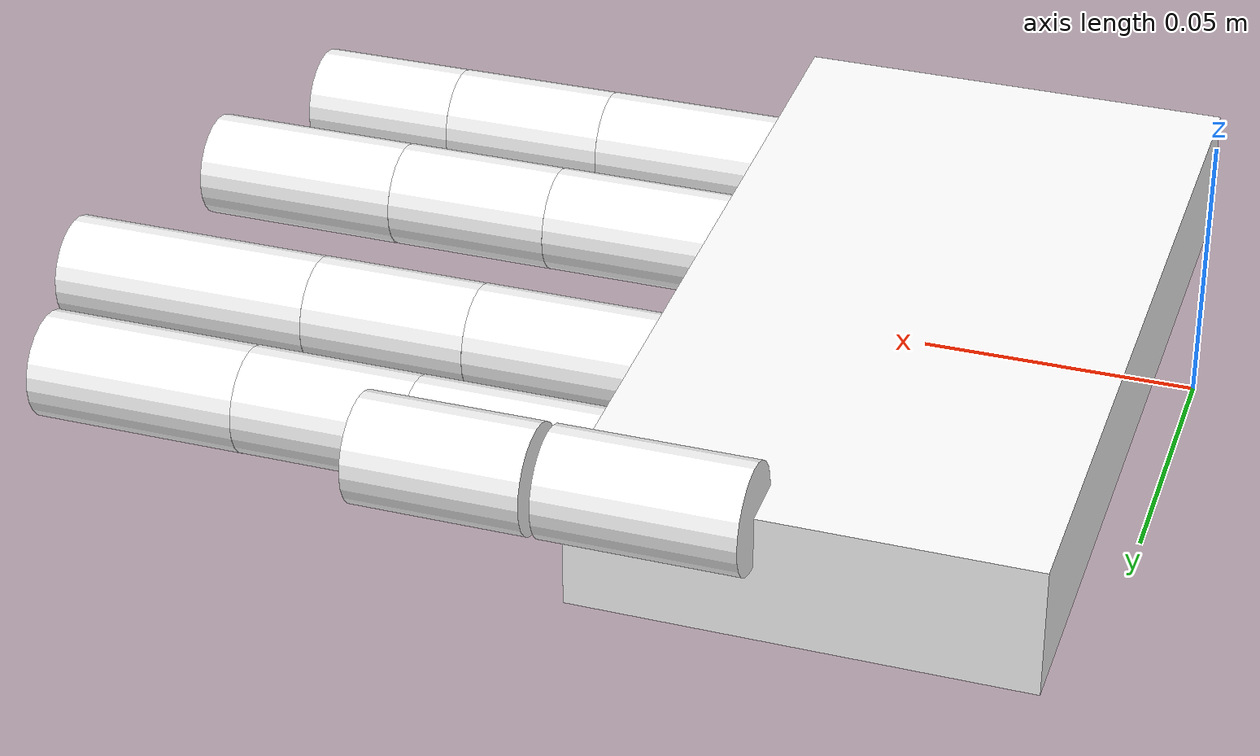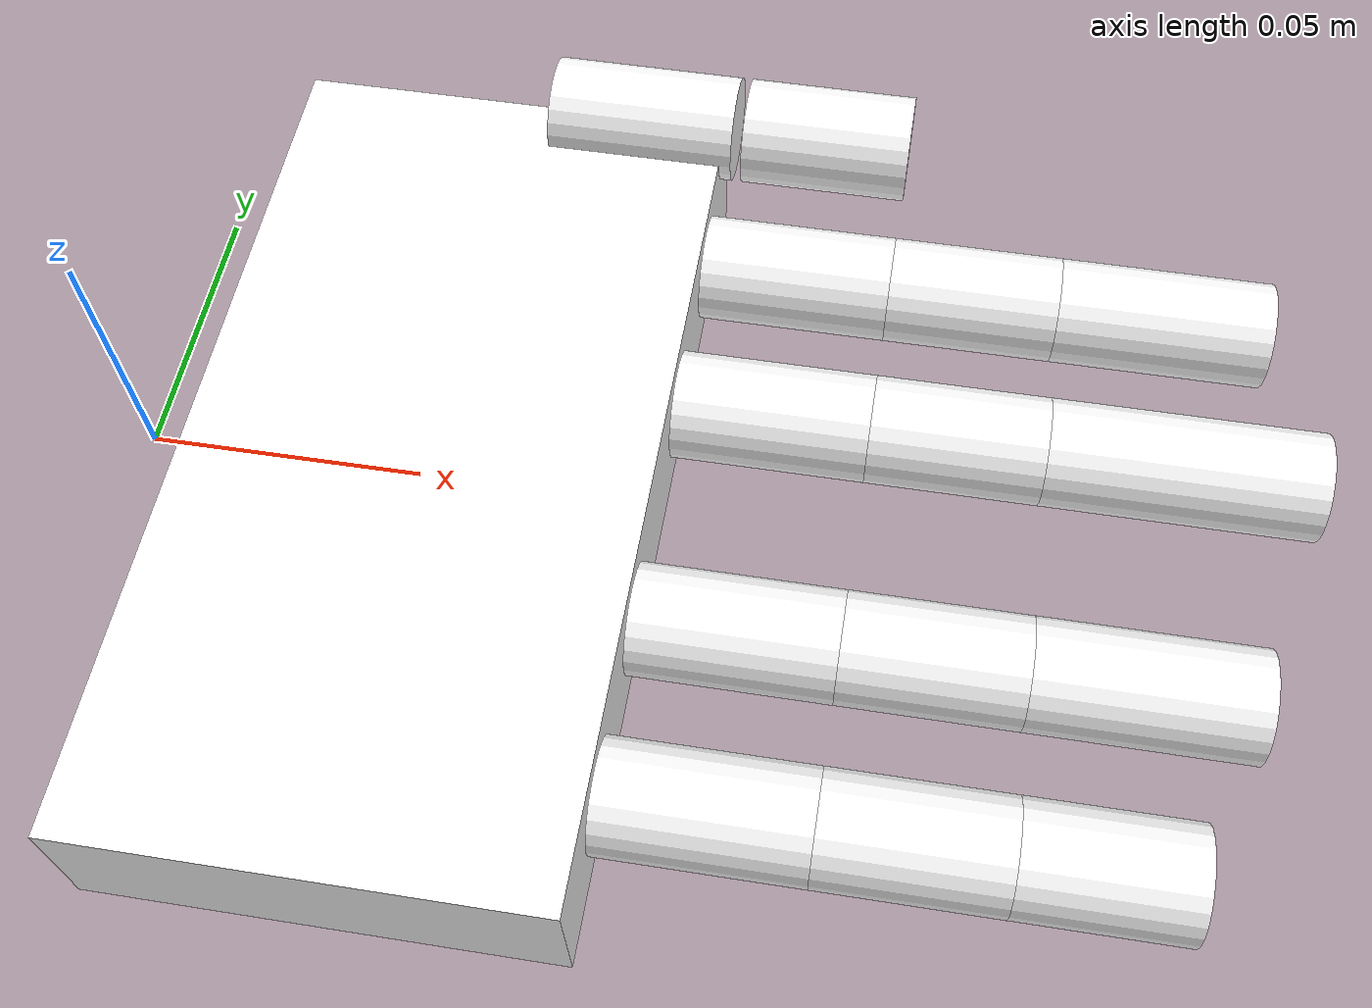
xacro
<?xml version="1.0" ?>

<robot name = "lefthand" xmlns:xacro="http://ros.org/wiki/xacro">

    <!-- Include Materials -->
    <material name="Black">
        <color rgba="0.0 0.0 0.0 1.0"/>
    </material>

    <material name="Red">
        <color rgba="0.8 0.0 0.0 1.0"/>
    </material>

    <material name="White">
        <color rgba="1.0 1.0 1.0 1.0"/>
    </material>

    <!--constants-->
    <xacro:property name="deg_to_rad" value="0.01745329251994329577"/>
    <xacro:property name="M_SCALE" value="0.001 0.001 0.001"/>
    <xacro:property name="M_PI" value="3.14159"/>
    <xacro:property name="rpy" value="1.57 0 1.57"/>

    <!-- Carpals Box -->
    <xacro:property name="c_l" value="0.0437" />
    <xacro:property name="c_b" value="0.025" />
    <xacro:property name="c_h" value="0.02" />

    <!-- Metacarpals Box-->
    <xacro:property name="metc_l" value="0.16" />
    <xacro:property name="metc_b" value="0.025" />
    <xacro:property name="metc_h" value="0.0837" />

    <!-- Proximal -->
    <xacro:property name="proxlen" value="0.036"/>
    <xacro:property name="proxrad" value="0.010"/>
    <!-- Intermediate -->
    <xacro:property name="interlen" value="0.032"/>
    <xacro:property name="interrad" value="0.010"/>
    <!-- Distal -->
    <xacro:property name="distlen" value="0.040"/>
    <xacro:property name="distrad" value="0.010"/>

    <xacro:macro name="inertial_matrix" params="mass">
        <inertial>
            <mass value="${mass}"/>
            <inertia ixx="1.0" ixy="0.0" ixz="0.0" iyy="0.5" iyz="0.0" izz="1.0" />
        </inertial>
    </xacro:macro>

    <xacro:macro name="transmission_block" params="joint_name">
        <transmission name="tran1">
            <type>transmission_interface/SimpleTransmission</type>
            <joint name="${joint_name}">
    	      <hardwareInterface>hardware_interface/PositionJointInterface</hardwareInterface>
            </joint>
            <actuator name="motor1">
                <hardwareInterface>hardware_interface/PositionJointInterface</hardwareInterface>
                <mechanicalReduction>1</mechanicalReduction>
            </actuator>
        </transmission>
    </xacro:macro>

    <!-- JOINTS AND LINKS -->

<!--        &lt;!&ndash;xacro:inertial_matrix mass="1"/&ndash;&gt;-->

    <link name="metacarpal">
        <visual>
            <origin xyz="0.05185 0 0" rpy="${rpy}"/>
            <geometry>
                <box size="${metc_l} ${metc_b} ${metc_h}"/>
            </geometry>
            <material name="White"/>
        </visual>
    </link>

    <gazebo reference="metacarpal">
        <material>Gazebo/Black</material>
    </gazebo>

     <!-- THUMB FINGER PROXIMAL-->

    <joint name="metacarpal_thumb_splay_1" type="continuous">
        <origin xyz="0.06 0.08 0.0125" rpy="-1.57 0 0"/>
        <parent link="metacarpal"/>
        <child link="thumb_p_splay1"/>
        <axis xyz="0 1 0"/>
        <dynamics damping="50" friction="1"/>
    </joint>

    <link name="thumb_p_splay1"></link>  <!-- SPLAY 1 LINK -->

    <joint name="metacarpal_thumb_splay_2" type="continuous">
        <origin xyz="0 0 0" rpy="3.14 0 0"/>
        <parent link="thumb_p_splay1"/>
        <child link="thumb_p_splay2"/>
        <axis xyz="0 0 1"/>
        <dynamics damping="50" friction="1"/>
    </joint>

    <link name="thumb_p_splay2"></link>  <!-- SPLAY 2 LINK -->

    <!-- THUMB FINGER PROXIMAL-->
    <joint name="thumb_meta_prox" type="continuous">
        <origin xyz="0 0 0" rpy="0 0 0"/>
        <parent link="thumb_p_splay2"/>
        <child link="thumb_p"/>
        <axis xyz="0 1 0"/>
        <dynamics damping="50" friction="1"/>
    </joint>

    <link name="thumb_p">
        <visual>
            <origin xyz="0.018 0 0" rpy="1.57 0 1.57"/>
            <geometry>
                <cylinder radius="${proxrad}" length="${proxlen}"/>
            </geometry>
            <material name="White"/>
        </visual>
        <xacro:inertial_matrix mass="1"/>
    </link>

    <!-- THUMB FINGER INTERMEDIATE-->
    <joint name="thumb_prox_inter" type="continuous">
        <origin xyz="${proxlen} 0 0" rpy="0 0 0"/>
        <parent link="thumb_p"/>
        <child link="thumb_i"/>
        <axis xyz="0 1 0"/>
        <dynamics damping="50" friction="1"/>
    </joint>

    <link name="thumb_i">
        <visual>
            <origin xyz="0.018 0 0" rpy="0 1.57 0"/>
            <geometry>
                <cylinder radius="${interrad}" length="${interlen}"/>
            </geometry>
            <material name="White"/>
        </visual>
        <xacro:inertial_matrix mass="1"/>
    </link>

<!-- THUMB END -->

    <!-- INDEX FINGER PROXIMAL-->
    <joint name="metacarpal_index" type="continuous">
        <origin xyz="0.0937 0 0" rpy="0 0 0"/>
        <parent link="metacarpal"/>
        <child link="index_p"/>
        <axis xyz="0 1 0"/>
        <dynamics damping="50" friction="1"/>
    </joint>
    <link name="index_p">
        <visual>
            <origin xyz="0.018 0.055 0" rpy="${rpy}"/>
            <geometry>
                <cylinder radius="${proxrad}" length="${proxlen}"/>
            </geometry>
            <material name="White"/>
        </visual>
        <xacro:inertial_matrix mass="1"/>
    </link>

    <!-- INDEX FINGER INTERMEDIATE-->
    <joint name="index_prox_inter" type="continuous">
        <origin xyz="${proxlen} 0 0" rpy="0 0 0"/>
        <parent link="index_p"/>
        <child link="index_i"/>
        <axis xyz="0 1 0"/>
        <dynamics damping="50" friction="1"/>
    </joint>
    <link name="index_i">
        <visual>
            <origin xyz="0.016 0.055 0" rpy="${rpy}"/>
            <geometry>
                <cylinder radius="${interrad}" length="${interlen}"/>
            </geometry>
            <material name="White"/>
        </visual>

        <xacro:inertial_matrix mass="1"/>
    </link>
    <!-- INDEX FINGER DISTAL-->
    <joint name="index_inter_dist" type="continuous">
        <origin xyz="${interlen} 0 0" rpy="0 0 0"/>
        <parent link="index_i"/>
        <child link="index_d"/>
        <axis xyz="0 1 0"/>
        <dynamics damping="50" friction="1"/>
    </joint>
    <link name="index_d">
        <visual>
            <origin xyz="0.020 0.055 0" rpy="${rpy}"/>
            <geometry>
                <cylinder radius="${distrad}" length="${distlen}"/>
            </geometry>
            <material name="White"/>
        </visual>

        <xacro:inertial_matrix mass="1"/>
    </link>

    <!-- MIDDLE FINGER PROXIMAL-->
    <joint name="metacarpal_middle" type="continuous">
        <origin xyz="0.0937 0 0" rpy="0 0 0"/>
        <parent link="metacarpal"/>
        <child link="middle_p"/>
        <axis xyz="0 1 0"/>
        <dynamics damping="50" friction="1"/>
    </joint>
    <link name="middle_p">
        <visual>
            <origin xyz="0.018 0.0225 0" rpy="${rpy}"/>
            <geometry>
                <cylinder radius="${proxrad}" length="${proxlen}"/>
            </geometry>
            <material name="White"/>
        </visual>

        <xacro:inertial_matrix mass="1"/>
    </link>

    <!-- MIDDLE FINGER INTERMEDIATE-->
    <joint name="middle_prox_inter" type="continuous">
        <origin xyz="${proxlen} 0 0" rpy="0 0 0"/>
        <parent link="middle_p"/>
        <child link="middle_i"/>
        <axis xyz="0 1 0"/>
        <dynamics damping="50" friction="1"/>
    </joint>
    <link name="middle_i">
        <visual>
            <origin xyz="0.016 0.0225 0" rpy="${rpy}"/>
            <geometry>
                <cylinder radius="${interrad}" length="${interlen}"/>
            </geometry>
            <material name="White"/>
        </visual>

        <xacro:inertial_matrix mass="1"/>
    </link>
    <!-- MIDDLE FINGER DISTAL-->
    <joint name="middle_inter_dist" type="continuous">
        <origin xyz="${interlen} 0 0" rpy="0 0 0"/>
        <parent link="middle_i"/>
        <child link="middle_d"/>
        <axis xyz="0 1 0"/>
        <dynamics damping="50" friction="1"/>
    </joint>
    <link name="middle_d">
        <visual>
            <origin xyz="0.025 0.0225 0" rpy="${rpy}"/>
            <geometry>
                <cylinder radius="${distrad}" length="${distlen + 0.01}"/>
            </geometry>
            <material name="White"/>
        </visual>

        <xacro:inertial_matrix mass="1"/>
    </link>

    <!-- RING FINGER PROXIMAL-->
    <joint name="metacarpal_ring" type="continuous">
        <origin xyz="0.0937 0 0" rpy="0 0 0"/>
        <parent link="metacarpal"/>
        <child link="ring_p"/>
        <axis xyz="0 1 0"/>
        <dynamics damping="50" friction="1"/>
    </joint>
    <link name="ring_p">
        <visual>
            <origin xyz="0.018 -0.0225 0" rpy="${rpy}"/>
            <geometry>
                <cylinder radius="${proxrad}" length="${proxlen}"/>
            </geometry>
            <material name="White"/>
        </visual>
        <xacro:inertial_matrix mass="1"/>
    </link>

    <!-- RING FINGER INTERMEDIATE-->
    <joint name="ring_prox_inter" type="continuous">
        <origin xyz="${proxlen} 0 0" rpy="0 0 0"/>
        <parent link="ring_p"/>
        <child link="ring_i"/>
        <axis xyz="0 1 0"/>
        <dynamics damping="50" friction="1"/>
    </joint>
    <link name="ring_i">
        <visual>
            <origin xyz="0.016 -0.0225 0" rpy="${rpy}"/>
            <geometry>
                <cylinder radius="${interrad}" length="${interlen}"/>
            </geometry>
            <material name="White"/>
        </visual>

        <xacro:inertial_matrix mass="1"/>
    </link>
    <!-- RING FINGER DISTAL-->
    <joint name="ring_inter_dist" type="continuous">
        <origin xyz="${interlen} 0 0" rpy="0 0 0"/>
        <parent link="ring_i"/>
        <child link="ring_d"/>
        <axis xyz="0 1 0"/>
        <dynamics damping="50" friction="1"/>
    </joint>
    <link name="ring_d">
        <visual>
            <origin xyz="0.020 -0.0225 0" rpy="${rpy}"/>
            <geometry>
                <cylinder radius="${distrad}" length="${distlen}"/>
            </geometry>
            <material name="White"/>
        </visual>

        <xacro:inertial_matrix mass="1"/>
    </link>

    <!-- PINKY FINGER PROXIMAL-->
    <joint name="metacarpal_pinky" type="continuous">
        <origin xyz="0.0937 0 0" rpy="0 0 0"/>
        <parent link="metacarpal"/>
        <child link="pinky_p"/>
        <axis xyz="0 1 0"/>
        <dynamics damping="50" friction="1"/>
    </joint>
    <link name="pinky_p">
        <visual>
            <origin xyz="0.018 -0.055 0" rpy="${rpy}"/>
            <geometry>
                <cylinder radius="${proxrad}" length="${proxlen}"/>
            </geometry>
            <material name="White"/>
        </visual>

        <xacro:inertial_matrix mass="1"/>
    </link>

    <!-- PINKY FINGER INTERMEDIATE-->
    <joint name="pinky_prox_inter" type="continuous">
        <origin xyz="${proxlen} 0 0" rpy="0 0 0"/>
        <parent link="pinky_p"/>
        <child link="pinky_i"/>
        <axis xyz="0 1 0"/>
        <dynamics damping="50" friction="1"/>
    </joint>
    <link name="pinky_i">
        <visual>
            <origin xyz="0.016 -0.055 0" rpy="${rpy}"/>
            <geometry>
                <cylinder radius="${interrad}" length="${interlen}"/>
            </geometry>
            <material name="White"/>
        </visual>

        <xacro:inertial_matrix mass="1"/>
    </link>
    <!-- PINKY FINGER DISTAL-->
    <joint name="pinky_inter_dist" type="continuous">
        <origin xyz="${interlen} 0 0" rpy="0 0 0"/>
        <parent link="pinky_i"/>
        <child link="pinky_d"/>
        <axis xyz="0 1 0"/>
        <dynamics damping="50" friction="1"/>
    </joint>
    <link name="pinky_d">
        <visual>
            <origin xyz="0.015 -0.055 0" rpy="${rpy}"/>
            <geometry>
                <cylinder radius="${distrad}" length="${distlen-0.01}"/>
            </geometry>
            <material name="White"/>
        </visual>

        <xacro:inertial_matrix mass="1"/>
    </link>

  <!-- Transmissions for ROS Control -->

    <xacro:transmission_block joint_name="metacarpal_index"/>
    <xacro:transmission_block joint_name="index_prox_inter"/>
    <xacro:transmission_block joint_name="index_inter_dist"/>
    <xacro:transmission_block joint_name="metacarpal_middle"/>
    <xacro:transmission_block joint_name="middle_prox_inter"/>
    <xacro:transmission_block joint_name="middle_inter_dist"/>

    <xacro:transmission_block joint_name="metacarpal_ring"/>
    <xacro:transmission_block joint_name="ring_prox_inter"/>
    <xacro:transmission_block joint_name="ring_inter_dist"/>
    <xacro:transmission_block joint_name="metacarpal_pinky"/>
    <xacro:transmission_block joint_name="pinky_prox_inter"/>
    <xacro:transmission_block joint_name="pinky_inter_dist"/>

    <xacro:transmission_block joint_name="metacarpal_thumb_splay_1"/>
    <xacro:transmission_block joint_name="metacarpal_thumb_splay_2"/>
    <xacro:transmission_block joint_name="metacarpal_thumb"/>
    <xacro:transmission_block joint_name="thumb_prox_inter"/>

 <!-- ros_control plugin -->
  <gazebo>
    <plugin name="gazebo_ros_control" filename="libgazebo_ros_control.so">
      <robotNamespace>/lefthand</robotNamespace>
    </plugin>
  </gazebo>

</robot>
